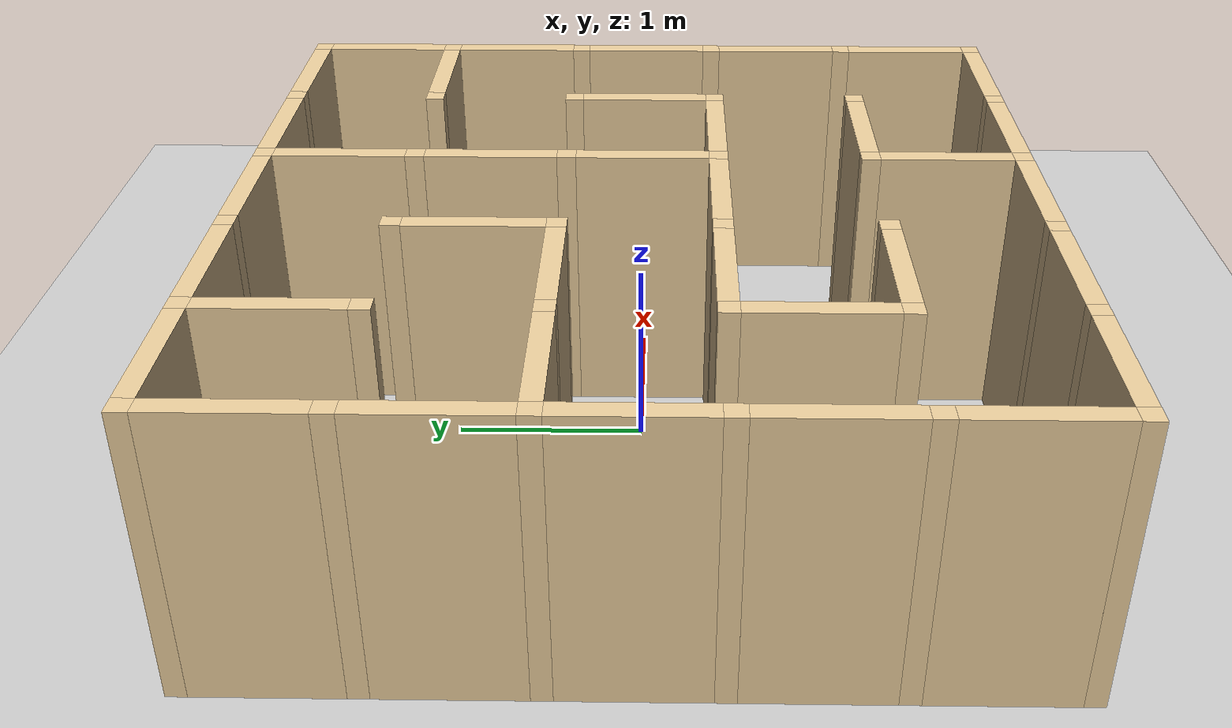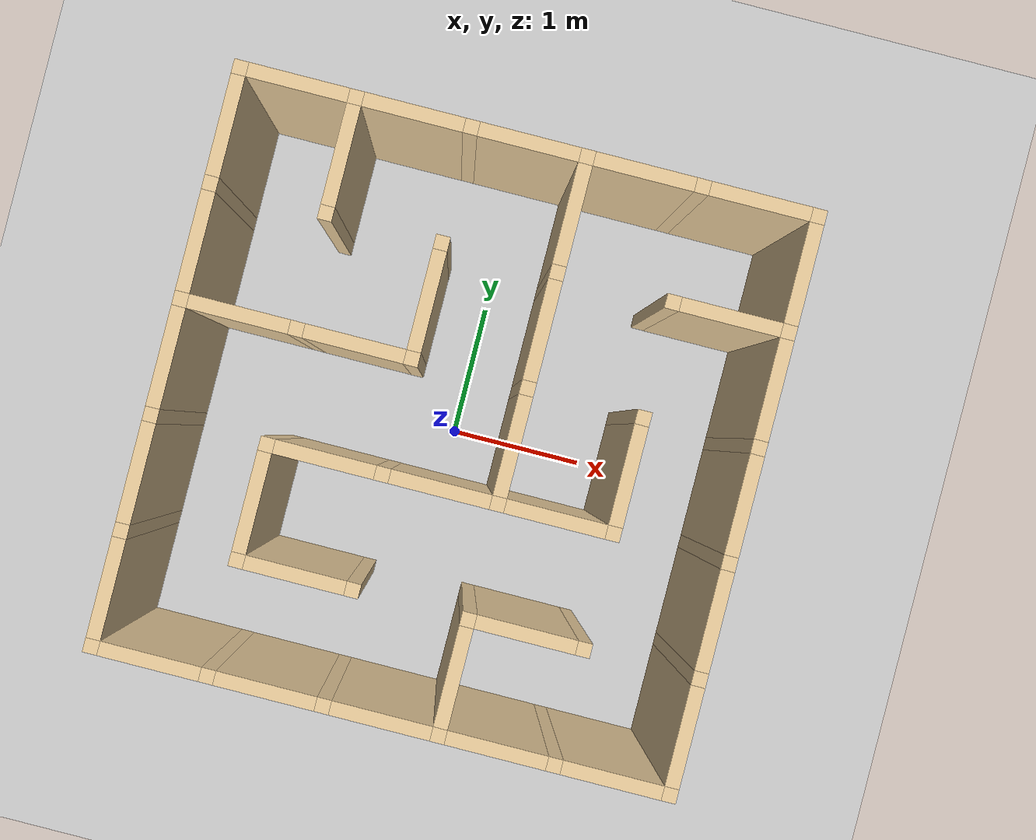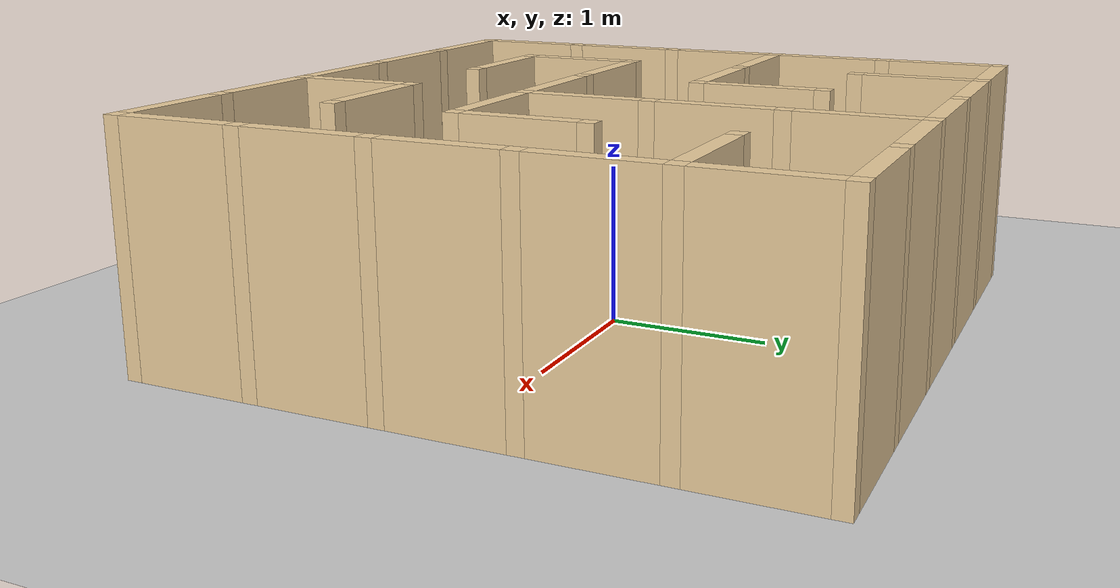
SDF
<?xml version="1.0"?>
<sdf version="1.8">
  <world name="maze_world">

    <plugin
      filename="gz-sim-physics-system"
      name="gz::sim::systems::Physics">
    </plugin>
    <plugin
      filename="gz-sim-user-commands-system"
      name="gz::sim::systems::UserCommands">
    </plugin>
    <plugin
      filename="gz-sim-scene-broadcaster-system"
      name="gz::sim::systems::SceneBroadcaster">
    </plugin>
    <plugin
      filename="gz-sim-sensors-system"
      name="gz::sim::systems::Sensors">
      <render_engine>ogre2</render_engine>
    </plugin>
    <plugin
      filename="gz-sim-imu-system"
      name="gz::sim::systems::Imu">
    </plugin>

    <physics type="ode">
      <real_time_update_rate>1000.0</real_time_update_rate>
      <max_step_size>0.001</max_step_size>
      <real_time_factor>1</real_time_factor>
      <ode>
        <solver>
          <type>quick</type>
          <iters>150</iters>
          <precon_iters>0</precon_iters>
          <sor>1.400000</sor>
          <use_dynamic_moi_rescaling>1</use_dynamic_moi_rescaling>
        </solver>
        <constraints>
          <cfm>0.00001</cfm>
          <erp>0.2</erp>
          <contact_max_correcting_vel>2000.000000</contact_max_correcting_vel>
          <contact_surface_layer>0.01000</contact_surface_layer>
        </constraints>
      </ode>
    </physics>

    <!-- The ground plane is written out here so the world starts with no network.
         The course maze generator wrote a Fuel include for it, which needs a download
         on the first run. -->
    <model name="ground_plane">
      <static>true</static>
      <link name="link">
        <collision name="collision">
          <geometry><plane><normal>0 0 1</normal><size>100 100</size></plane></geometry>
        </collision>
        <visual name="visual">
          <geometry><plane><normal>0 0 1</normal><size>100 100</size></plane></geometry>
          <material>
            <ambient>0.8 0.8 0.8 1</ambient>
            <diffuse>0.8 0.8 0.8 1</diffuse>
          </material>
        </visual>
      </link>
    </model>

    <model name="maze">
      <pose>0 0 0 0 0 0</pose>
		  <link name='Wall_0_0_h'>
		    <collision name='Wall_0_Collision'>
		      <geometry>
		        <box>
		          <size>0.7000000000000001 0.1 1.5</size>
		        </box>
		      </geometry>
		      <pose>0 0 0.75 0 -0 0</pose>
		    </collision>
		    <visual name='Wall_0_Visual'>
		      <pose>0 0 0.75 0 -0 0</pose>
		      <geometry>
		        <box>
		          <size>0.7000000000000001 0.1 1.5</size>
		        </box>
		      </geometry>
		      <material>
		        <diffuse>0.921569 0.807843 0.615686 1</diffuse>
		        <ambient>0.921569 0.807843 0.615686 1</ambient>
		      </material>
		      <meta>
		        <layer>0</layer>
		      </meta>
		    </visual>
		    <pose>-1.6 2.0 0 0 -0 0</pose>
		  </link>
        		  <link name='Wall_0_0_v'>
		    <collision name='Wall_0_Collision'>
		      <geometry>
		        <box>
		          <size>0.7000000000000001 0.1 1.5</size>
		        </box>
		      </geometry>
		      <pose>0 0 0.75 0 -0 0</pose>
		    </collision>
		    <visual name='Wall_0_Visual'>
		      <pose>0 0 0.75 0 -0 0</pose>
		      <geometry>
		        <box>
		          <size>0.7000000000000001 0.1 1.5</size>
		        </box>
		      </geometry>
		      <material>
		        <diffuse>0.921569 0.807843 0.615686 1</diffuse>
		        <ambient>0.921569 0.807843 0.615686 1</ambient>
		      </material>
		      <meta>
		        <layer>0</layer>
		      </meta>
		    </visual>
		    <pose>-2.0 1.6 0 0 -0 1.5708</pose>
		  </link>
        	    <link name='Joint_-2.0_2.0'>
		    <collision name='Wall_2_Collision'>
		      <geometry>
		        <box>
		          <size>0.1 0.1 1.5</size>
		        </box>
		      </geometry>
		      <pose>0 0 0.75 0 -0 0</pose>
		    </collision>
		    <visual name='Wall_2_Visual'>
		      <pose>0 0 0.75 0 -0 0</pose>
		      <geometry>
		        <box>
		          <size>0.1 0.1 1.5</size>
		        </box>
		      </geometry>
		      <material>
		        <diffuse>0.921569 0.807843 0.615686 1</diffuse>
		        <ambient>0.721569 0.907843 0.215686 1</ambient>
		      </material>
		      <meta>
		        <layer>0</layer>
		      </meta>
		    </visual>
		    <pose>-2.0 2.0 0 0 -0 0</pose>
		  </link>
        		  <link name='Wall_1_0_h'>
		    <collision name='Wall_0_Collision'>
		      <geometry>
		        <box>
		          <size>0.7000000000000001 0.1 1.5</size>
		        </box>
		      </geometry>
		      <pose>0 0 0.75 0 -0 0</pose>
		    </collision>
		    <visual name='Wall_0_Visual'>
		      <pose>0 0 0.75 0 -0 0</pose>
		      <geometry>
		        <box>
		          <size>0.7000000000000001 0.1 1.5</size>
		        </box>
		      </geometry>
		      <material>
		        <diffuse>0.921569 0.807843 0.615686 1</diffuse>
		        <ambient>0.921569 0.807843 0.615686 1</ambient>
		      </material>
		      <meta>
		        <layer>0</layer>
		      </meta>
		    </visual>
		    <pose>-0.7999999999999998 2.0 0 0 -0 0</pose>
		  </link>
        		  <link name='Wall_1_0_v'>
		    <collision name='Wall_0_Collision'>
		      <geometry>
		        <box>
		          <size>0.7000000000000001 0.1 1.5</size>
		        </box>
		      </geometry>
		      <pose>0 0 0.75 0 -0 0</pose>
		    </collision>
		    <visual name='Wall_0_Visual'>
		      <pose>0 0 0.75 0 -0 0</pose>
		      <geometry>
		        <box>
		          <size>0.7000000000000001 0.1 1.5</size>
		        </box>
		      </geometry>
		      <material>
		        <diffuse>0.921569 0.807843 0.615686 1</diffuse>
		        <ambient>0.921569 0.807843 0.615686 1</ambient>
		      </material>
		      <meta>
		        <layer>0</layer>
		      </meta>
		    </visual>
		    <pose>-1.2 1.6 0 0 -0 1.5708</pose>
		  </link>
        	    <link name='Joint_-1.2_2.0'>
		    <collision name='Wall_2_Collision'>
		      <geometry>
		        <box>
		          <size>0.1 0.1 1.5</size>
		        </box>
		      </geometry>
		      <pose>0 0 0.75 0 -0 0</pose>
		    </collision>
		    <visual name='Wall_2_Visual'>
		      <pose>0 0 0.75 0 -0 0</pose>
		      <geometry>
		        <box>
		          <size>0.1 0.1 1.5</size>
		        </box>
		      </geometry>
		      <material>
		        <diffuse>0.921569 0.807843 0.615686 1</diffuse>
		        <ambient>0.721569 0.907843 0.215686 1</ambient>
		      </material>
		      <meta>
		        <layer>0</layer>
		      </meta>
		    </visual>
		    <pose>-1.2 2.0 0 0 -0 0</pose>
		  </link>
        		  <link name='Wall_2_0_h'>
		    <collision name='Wall_0_Collision'>
		      <geometry>
		        <box>
		          <size>0.7000000000000001 0.1 1.5</size>
		        </box>
		      </geometry>
		      <pose>0 0 0.75 0 -0 0</pose>
		    </collision>
		    <visual name='Wall_0_Visual'>
		      <pose>0 0 0.75 0 -0 0</pose>
		      <geometry>
		        <box>
		          <size>0.7000000000000001 0.1 1.5</size>
		        </box>
		      </geometry>
		      <material>
		        <diffuse>0.921569 0.807843 0.615686 1</diffuse>
		        <ambient>0.921569 0.807843 0.615686 1</ambient>
		      </material>
		      <meta>
		        <layer>0</layer>
		      </meta>
		    </visual>
		    <pose>0.0 2.0 0 0 -0 0</pose>
		  </link>
        	    <link name='Joint_-0.3999999999999999_2.0'>
		    <collision name='Wall_2_Collision'>
		      <geometry>
		        <box>
		          <size>0.1 0.1 1.5</size>
		        </box>
		      </geometry>
		      <pose>0 0 0.75 0 -0 0</pose>
		    </collision>
		    <visual name='Wall_2_Visual'>
		      <pose>0 0 0.75 0 -0 0</pose>
		      <geometry>
		        <box>
		          <size>0.1 0.1 1.5</size>
		        </box>
		      </geometry>
		      <material>
		        <diffuse>0.921569 0.807843 0.615686 1</diffuse>
		        <ambient>0.721569 0.907843 0.215686 1</ambient>
		      </material>
		      <meta>
		        <layer>0</layer>
		      </meta>
		    </visual>
		    <pose>-0.3999999999999999 2.0 0 0 -0 0</pose>
		  </link>
        		  <link name='Wall_3_0_h'>
		    <collision name='Wall_0_Collision'>
		      <geometry>
		        <box>
		          <size>0.7000000000000001 0.1 1.5</size>
		        </box>
		      </geometry>
		      <pose>0 0 0.75 0 -0 0</pose>
		    </collision>
		    <visual name='Wall_0_Visual'>
		      <pose>0 0 0.75 0 -0 0</pose>
		      <geometry>
		        <box>
		          <size>0.7000000000000001 0.1 1.5</size>
		        </box>
		      </geometry>
		      <material>
		        <diffuse>0.921569 0.807843 0.615686 1</diffuse>
		        <ambient>0.921569 0.807843 0.615686 1</ambient>
		      </material>
		      <meta>
		        <layer>0</layer>
		      </meta>
		    </visual>
		    <pose>0.8000000000000003 2.0 0 0 -0 0</pose>
		  </link>
        		  <link name='Wall_3_0_v'>
		    <collision name='Wall_0_Collision'>
		      <geometry>
		        <box>
		          <size>0.7000000000000001 0.1 1.5</size>
		        </box>
		      </geometry>
		      <pose>0 0 0.75 0 -0 0</pose>
		    </collision>
		    <visual name='Wall_0_Visual'>
		      <pose>0 0 0.75 0 -0 0</pose>
		      <geometry>
		        <box>
		          <size>0.7000000000000001 0.1 1.5</size>
		        </box>
		      </geometry>
		      <material>
		        <diffuse>0.921569 0.807843 0.615686 1</diffuse>
		        <ambient>0.921569 0.807843 0.615686 1</ambient>
		      </material>
		      <meta>
		        <layer>0</layer>
		      </meta>
		    </visual>
		    <pose>0.40000000000000036 1.6 0 0 -0 1.5708</pose>
		  </link>
        	    <link name='Joint_0.40000000000000036_2.0'>
		    <collision name='Wall_2_Collision'>
		      <geometry>
		        <box>
		          <size>0.1 0.1 1.5</size>
		        </box>
		      </geometry>
		      <pose>0 0 0.75 0 -0 0</pose>
		    </collision>
		    <visual name='Wall_2_Visual'>
		      <pose>0 0 0.75 0 -0 0</pose>
		      <geometry>
		        <box>
		          <size>0.1 0.1 1.5</size>
		        </box>
		      </geometry>
		      <material>
		        <diffuse>0.921569 0.807843 0.615686 1</diffuse>
		        <ambient>0.721569 0.907843 0.215686 1</ambient>
		      </material>
		      <meta>
		        <layer>0</layer>
		      </meta>
		    </visual>
		    <pose>0.40000000000000036 2.0 0 0 -0 0</pose>
		  </link>
        		  <link name='Wall_4_0_h'>
		    <collision name='Wall_0_Collision'>
		      <geometry>
		        <box>
		          <size>0.7000000000000001 0.1 1.5</size>
		        </box>
		      </geometry>
		      <pose>0 0 0.75 0 -0 0</pose>
		    </collision>
		    <visual name='Wall_0_Visual'>
		      <pose>0 0 0.75 0 -0 0</pose>
		      <geometry>
		        <box>
		          <size>0.7000000000000001 0.1 1.5</size>
		        </box>
		      </geometry>
		      <material>
		        <diffuse>0.921569 0.807843 0.615686 1</diffuse>
		        <ambient>0.921569 0.807843 0.615686 1</ambient>
		      </material>
		      <meta>
		        <layer>0</layer>
		      </meta>
		    </visual>
		    <pose>1.6 2.0 0 0 -0 0</pose>
		  </link>
        	    <link name='Joint_1.2000000000000002_2.0'>
		    <collision name='Wall_2_Collision'>
		      <geometry>
		        <box>
		          <size>0.1 0.1 1.5</size>
		        </box>
		      </geometry>
		      <pose>0 0 0.75 0 -0 0</pose>
		    </collision>
		    <visual name='Wall_2_Visual'>
		      <pose>0 0 0.75 0 -0 0</pose>
		      <geometry>
		        <box>
		          <size>0.1 0.1 1.5</size>
		        </box>
		      </geometry>
		      <material>
		        <diffuse>0.921569 0.807843 0.615686 1</diffuse>
		        <ambient>0.721569 0.907843 0.215686 1</ambient>
		      </material>
		      <meta>
		        <layer>0</layer>
		      </meta>
		    </visual>
		    <pose>1.2000000000000002 2.0 0 0 -0 0</pose>
		  </link>
        		  <link name='Wall_5_0_v'>
		    <collision name='Wall_0_Collision'>
		      <geometry>
		        <box>
		          <size>0.7000000000000001 0.1 1.5</size>
		        </box>
		      </geometry>
		      <pose>0 0 0.75 0 -0 0</pose>
		    </collision>
		    <visual name='Wall_0_Visual'>
		      <pose>0 0 0.75 0 -0 0</pose>
		      <geometry>
		        <box>
		          <size>0.7000000000000001 0.1 1.5</size>
		        </box>
		      </geometry>
		      <material>
		        <diffuse>0.921569 0.807843 0.615686 1</diffuse>
		        <ambient>0.921569 0.807843 0.615686 1</ambient>
		      </material>
		      <meta>
		        <layer>0</layer>
		      </meta>
		    </visual>
		    <pose>2.0 1.6 0 0 -0 1.5708</pose>
		  </link>
        	    <link name='Joint_2.0_2.0'>
		    <collision name='Wall_2_Collision'>
		      <geometry>
		        <box>
		          <size>0.1 0.1 1.5</size>
		        </box>
		      </geometry>
		      <pose>0 0 0.75 0 -0 0</pose>
		    </collision>
		    <visual name='Wall_2_Visual'>
		      <pose>0 0 0.75 0 -0 0</pose>
		      <geometry>
		        <box>
		          <size>0.1 0.1 1.5</size>
		        </box>
		      </geometry>
		      <material>
		        <diffuse>0.921569 0.807843 0.615686 1</diffuse>
		        <ambient>0.721569 0.907843 0.215686 1</ambient>
		      </material>
		      <meta>
		        <layer>0</layer>
		      </meta>
		    </visual>
		    <pose>2.0 2.0 0 0 -0 0</pose>
		  </link>
        		  <link name='Wall_0_1_v'>
		    <collision name='Wall_0_Collision'>
		      <geometry>
		        <box>
		          <size>0.7000000000000001 0.1 1.5</size>
		        </box>
		      </geometry>
		      <pose>0 0 0.75 0 -0 0</pose>
		    </collision>
		    <visual name='Wall_0_Visual'>
		      <pose>0 0 0.75 0 -0 0</pose>
		      <geometry>
		        <box>
		          <size>0.7000000000000001 0.1 1.5</size>
		        </box>
		      </geometry>
		      <material>
		        <diffuse>0.921569 0.807843 0.615686 1</diffuse>
		        <ambient>0.921569 0.807843 0.615686 1</ambient>
		      </material>
		      <meta>
		        <layer>0</layer>
		      </meta>
		    </visual>
		    <pose>-2.0 0.7999999999999998 0 0 -0 1.5708</pose>
		  </link>
        	    <link name='Joint_-2.0_1.2'>
		    <collision name='Wall_2_Collision'>
		      <geometry>
		        <box>
		          <size>0.1 0.1 1.5</size>
		        </box>
		      </geometry>
		      <pose>0 0 0.75 0 -0 0</pose>
		    </collision>
		    <visual name='Wall_2_Visual'>
		      <pose>0 0 0.75 0 -0 0</pose>
		      <geometry>
		        <box>
		          <size>0.1 0.1 1.5</size>
		        </box>
		      </geometry>
		      <material>
		        <diffuse>0.921569 0.807843 0.615686 1</diffuse>
		        <ambient>0.721569 0.907843 0.215686 1</ambient>
		      </material>
		      <meta>
		        <layer>0</layer>
		      </meta>
		    </visual>
		    <pose>-2.0 1.2 0 0 -0 0</pose>
		  </link>
        	    <link name='Joint_-1.2_1.2'>
		    <collision name='Wall_2_Collision'>
		      <geometry>
		        <box>
		          <size>0.1 0.1 1.5</size>
		        </box>
		      </geometry>
		      <pose>0 0 0.75 0 -0 0</pose>
		    </collision>
		    <visual name='Wall_2_Visual'>
		      <pose>0 0 0.75 0 -0 0</pose>
		      <geometry>
		        <box>
		          <size>0.1 0.1 1.5</size>
		        </box>
		      </geometry>
		      <material>
		        <diffuse>0.921569 0.807843 0.615686 1</diffuse>
		        <ambient>0.721569 0.907843 0.215686 1</ambient>
		      </material>
		      <meta>
		        <layer>0</layer>
		      </meta>
		    </visual>
		    <pose>-1.2 1.2 0 0 -0 0</pose>
		  </link>
        		  <link name='Wall_2_1_v'>
		    <collision name='Wall_0_Collision'>
		      <geometry>
		        <box>
		          <size>0.7000000000000001 0.1 1.5</size>
		        </box>
		      </geometry>
		      <pose>0 0 0.75 0 -0 0</pose>
		    </collision>
		    <visual name='Wall_0_Visual'>
		      <pose>0 0 0.75 0 -0 0</pose>
		      <geometry>
		        <box>
		          <size>0.7000000000000001 0.1 1.5</size>
		        </box>
		      </geometry>
		      <material>
		        <diffuse>0.921569 0.807843 0.615686 1</diffuse>
		        <ambient>0.921569 0.807843 0.615686 1</ambient>
		      </material>
		      <meta>
		        <layer>0</layer>
		      </meta>
		    </visual>
		    <pose>-0.3999999999999999 0.7999999999999998 0 0 -0 1.5708</pose>
		  </link>
        	    <link name='Joint_-0.3999999999999999_1.2'>
		    <collision name='Wall_2_Collision'>
		      <geometry>
		        <box>
		          <size>0.1 0.1 1.5</size>
		        </box>
		      </geometry>
		      <pose>0 0 0.75 0 -0 0</pose>
		    </collision>
		    <visual name='Wall_2_Visual'>
		      <pose>0 0 0.75 0 -0 0</pose>
		      <geometry>
		        <box>
		          <size>0.1 0.1 1.5</size>
		        </box>
		      </geometry>
		      <material>
		        <diffuse>0.921569 0.807843 0.615686 1</diffuse>
		        <ambient>0.721569 0.907843 0.215686 1</ambient>
		      </material>
		      <meta>
		        <layer>0</layer>
		      </meta>
		    </visual>
		    <pose>-0.3999999999999999 1.2 0 0 -0 0</pose>
		  </link>
        		  <link name='Wall_3_1_v'>
		    <collision name='Wall_0_Collision'>
		      <geometry>
		        <box>
		          <size>0.7000000000000001 0.1 1.5</size>
		        </box>
		      </geometry>
		      <pose>0 0 0.75 0 -0 0</pose>
		    </collision>
		    <visual name='Wall_0_Visual'>
		      <pose>0 0 0.75 0 -0 0</pose>
		      <geometry>
		        <box>
		          <size>0.7000000000000001 0.1 1.5</size>
		        </box>
		      </geometry>
		      <material>
		        <diffuse>0.921569 0.807843 0.615686 1</diffuse>
		        <ambient>0.921569 0.807843 0.615686 1</ambient>
		      </material>
		      <meta>
		        <layer>0</layer>
		      </meta>
		    </visual>
		    <pose>0.40000000000000036 0.7999999999999998 0 0 -0 1.5708</pose>
		  </link>
        	    <link name='Joint_0.40000000000000036_1.2'>
		    <collision name='Wall_2_Collision'>
		      <geometry>
		        <box>
		          <size>0.1 0.1 1.5</size>
		        </box>
		      </geometry>
		      <pose>0 0 0.75 0 -0 0</pose>
		    </collision>
		    <visual name='Wall_2_Visual'>
		      <pose>0 0 0.75 0 -0 0</pose>
		      <geometry>
		        <box>
		          <size>0.1 0.1 1.5</size>
		        </box>
		      </geometry>
		      <material>
		        <diffuse>0.921569 0.807843 0.615686 1</diffuse>
		        <ambient>0.721569 0.907843 0.215686 1</ambient>
		      </material>
		      <meta>
		        <layer>0</layer>
		      </meta>
		    </visual>
		    <pose>0.40000000000000036 1.2 0 0 -0 0</pose>
		  </link>
        		  <link name='Wall_4_1_h'>
		    <collision name='Wall_0_Collision'>
		      <geometry>
		        <box>
		          <size>0.7000000000000001 0.1 1.5</size>
		        </box>
		      </geometry>
		      <pose>0 0 0.75 0 -0 0</pose>
		    </collision>
		    <visual name='Wall_0_Visual'>
		      <pose>0 0 0.75 0 -0 0</pose>
		      <geometry>
		        <box>
		          <size>0.7000000000000001 0.1 1.5</size>
		        </box>
		      </geometry>
		      <material>
		        <diffuse>0.921569 0.807843 0.615686 1</diffuse>
		        <ambient>0.921569 0.807843 0.615686 1</ambient>
		      </material>
		      <meta>
		        <layer>0</layer>
		      </meta>
		    </visual>
		    <pose>1.6 1.2 0 0 -0 0</pose>
		  </link>
        	    <link name='Joint_1.2000000000000002_1.2'>
		    <collision name='Wall_2_Collision'>
		      <geometry>
		        <box>
		          <size>0.1 0.1 1.5</size>
		        </box>
		      </geometry>
		      <pose>0 0 0.75 0 -0 0</pose>
		    </collision>
		    <visual name='Wall_2_Visual'>
		      <pose>0 0 0.75 0 -0 0</pose>
		      <geometry>
		        <box>
		          <size>0.1 0.1 1.5</size>
		        </box>
		      </geometry>
		      <material>
		        <diffuse>0.921569 0.807843 0.615686 1</diffuse>
		        <ambient>0.721569 0.907843 0.215686 1</ambient>
		      </material>
		      <meta>
		        <layer>0</layer>
		      </meta>
		    </visual>
		    <pose>1.2000000000000002 1.2 0 0 -0 0</pose>
		  </link>
        		  <link name='Wall_5_1_v'>
		    <collision name='Wall_0_Collision'>
		      <geometry>
		        <box>
		          <size>0.7000000000000001 0.1 1.5</size>
		        </box>
		      </geometry>
		      <pose>0 0 0.75 0 -0 0</pose>
		    </collision>
		    <visual name='Wall_0_Visual'>
		      <pose>0 0 0.75 0 -0 0</pose>
		      <geometry>
		        <box>
		          <size>0.7000000000000001 0.1 1.5</size>
		        </box>
		      </geometry>
		      <material>
		        <diffuse>0.921569 0.807843 0.615686 1</diffuse>
		        <ambient>0.921569 0.807843 0.615686 1</ambient>
		      </material>
		      <meta>
		        <layer>0</layer>
		      </meta>
		    </visual>
		    <pose>2.0 0.7999999999999998 0 0 -0 1.5708</pose>
		  </link>
        	    <link name='Joint_2.0_1.2'>
		    <collision name='Wall_2_Collision'>
		      <geometry>
		        <box>
		          <size>0.1 0.1 1.5</size>
		        </box>
		      </geometry>
		      <pose>0 0 0.75 0 -0 0</pose>
		    </collision>
		    <visual name='Wall_2_Visual'>
		      <pose>0 0 0.75 0 -0 0</pose>
		      <geometry>
		        <box>
		          <size>0.1 0.1 1.5</size>
		        </box>
		      </geometry>
		      <material>
		        <diffuse>0.921569 0.807843 0.615686 1</diffuse>
		        <ambient>0.721569 0.907843 0.215686 1</ambient>
		      </material>
		      <meta>
		        <layer>0</layer>
		      </meta>
		    </visual>
		    <pose>2.0 1.2 0 0 -0 0</pose>
		  </link>
        		  <link name='Wall_0_2_h'>
		    <collision name='Wall_0_Collision'>
		      <geometry>
		        <box>
		          <size>0.7000000000000001 0.1 1.5</size>
		        </box>
		      </geometry>
		      <pose>0 0 0.75 0 -0 0</pose>
		    </collision>
		    <visual name='Wall_0_Visual'>
		      <pose>0 0 0.75 0 -0 0</pose>
		      <geometry>
		        <box>
		          <size>0.7000000000000001 0.1 1.5</size>
		        </box>
		      </geometry>
		      <material>
		        <diffuse>0.921569 0.807843 0.615686 1</diffuse>
		        <ambient>0.921569 0.807843 0.615686 1</ambient>
		      </material>
		      <meta>
		        <layer>0</layer>
		      </meta>
		    </visual>
		    <pose>-1.6 0.3999999999999999 0 0 -0 0</pose>
		  </link>
        		  <link name='Wall_0_2_v'>
		    <collision name='Wall_0_Collision'>
		      <geometry>
		        <box>
		          <size>0.7000000000000001 0.1 1.5</size>
		        </box>
		      </geometry>
		      <pose>0 0 0.75 0 -0 0</pose>
		    </collision>
		    <visual name='Wall_0_Visual'>
		      <pose>0 0 0.75 0 -0 0</pose>
		      <geometry>
		        <box>
		          <size>0.7000000000000001 0.1 1.5</size>
		        </box>
		      </geometry>
		      <material>
		        <diffuse>0.921569 0.807843 0.615686 1</diffuse>
		        <ambient>0.921569 0.807843 0.615686 1</ambient>
		      </material>
		      <meta>
		        <layer>0</layer>
		      </meta>
		    </visual>
		    <pose>-2.0 -0.0 0 0 -0 1.5708</pose>
		  </link>
        	    <link name='Joint_-2.0_0.3999999999999999'>
		    <collision name='Wall_2_Collision'>
		      <geometry>
		        <box>
		          <size>0.1 0.1 1.5</size>
		        </box>
		      </geometry>
		      <pose>0 0 0.75 0 -0 0</pose>
		    </collision>
		    <visual name='Wall_2_Visual'>
		      <pose>0 0 0.75 0 -0 0</pose>
		      <geometry>
		        <box>
		          <size>0.1 0.1 1.5</size>
		        </box>
		      </geometry>
		      <material>
		        <diffuse>0.921569 0.807843 0.615686 1</diffuse>
		        <ambient>0.721569 0.907843 0.215686 1</ambient>
		      </material>
		      <meta>
		        <layer>0</layer>
		      </meta>
		    </visual>
		    <pose>-2.0 0.3999999999999999 0 0 -0 0</pose>
		  </link>
        		  <link name='Wall_1_2_h'>
		    <collision name='Wall_0_Collision'>
		      <geometry>
		        <box>
		          <size>0.7000000000000001 0.1 1.5</size>
		        </box>
		      </geometry>
		      <pose>0 0 0.75 0 -0 0</pose>
		    </collision>
		    <visual name='Wall_0_Visual'>
		      <pose>0 0 0.75 0 -0 0</pose>
		      <geometry>
		        <box>
		          <size>0.7000000000000001 0.1 1.5</size>
		        </box>
		      </geometry>
		      <material>
		        <diffuse>0.921569 0.807843 0.615686 1</diffuse>
		        <ambient>0.921569 0.807843 0.615686 1</ambient>
		      </material>
		      <meta>
		        <layer>0</layer>
		      </meta>
		    </visual>
		    <pose>-0.7999999999999998 0.3999999999999999 0 0 -0 0</pose>
		  </link>
        	    <link name='Joint_-1.2_0.3999999999999999'>
		    <collision name='Wall_2_Collision'>
		      <geometry>
		        <box>
		          <size>0.1 0.1 1.5</size>
		        </box>
		      </geometry>
		      <pose>0 0 0.75 0 -0 0</pose>
		    </collision>
		    <visual name='Wall_2_Visual'>
		      <pose>0 0 0.75 0 -0 0</pose>
		      <geometry>
		        <box>
		          <size>0.1 0.1 1.5</size>
		        </box>
		      </geometry>
		      <material>
		        <diffuse>0.921569 0.807843 0.615686 1</diffuse>
		        <ambient>0.721569 0.907843 0.215686 1</ambient>
		      </material>
		      <meta>
		        <layer>0</layer>
		      </meta>
		    </visual>
		    <pose>-1.2 0.3999999999999999 0 0 -0 0</pose>
		  </link>
        	    <link name='Joint_-0.3999999999999999_0.3999999999999999'>
		    <collision name='Wall_2_Collision'>
		      <geometry>
		        <box>
		          <size>0.1 0.1 1.5</size>
		        </box>
		      </geometry>
		      <pose>0 0 0.75 0 -0 0</pose>
		    </collision>
		    <visual name='Wall_2_Visual'>
		      <pose>0 0 0.75 0 -0 0</pose>
		      <geometry>
		        <box>
		          <size>0.1 0.1 1.5</size>
		        </box>
		      </geometry>
		      <material>
		        <diffuse>0.921569 0.807843 0.615686 1</diffuse>
		        <ambient>0.721569 0.907843 0.215686 1</ambient>
		      </material>
		      <meta>
		        <layer>0</layer>
		      </meta>
		    </visual>
		    <pose>-0.3999999999999999 0.3999999999999999 0 0 -0 0</pose>
		  </link>
        		  <link name='Wall_3_2_v'>
		    <collision name='Wall_0_Collision'>
		      <geometry>
		        <box>
		          <size>0.7000000000000001 0.1 1.5</size>
		        </box>
		      </geometry>
		      <pose>0 0 0.75 0 -0 0</pose>
		    </collision>
		    <visual name='Wall_0_Visual'>
		      <pose>0 0 0.75 0 -0 0</pose>
		      <geometry>
		        <box>
		          <size>0.7000000000000001 0.1 1.5</size>
		        </box>
		      </geometry>
		      <material>
		        <diffuse>0.921569 0.807843 0.615686 1</diffuse>
		        <ambient>0.921569 0.807843 0.615686 1</ambient>
		      </material>
		      <meta>
		        <layer>0</layer>
		      </meta>
		    </visual>
		    <pose>0.40000000000000036 -0.0 0 0 -0 1.5708</pose>
		  </link>
        	    <link name='Joint_0.40000000000000036_0.3999999999999999'>
		    <collision name='Wall_2_Collision'>
		      <geometry>
		        <box>
		          <size>0.1 0.1 1.5</size>
		        </box>
		      </geometry>
		      <pose>0 0 0.75 0 -0 0</pose>
		    </collision>
		    <visual name='Wall_2_Visual'>
		      <pose>0 0 0.75 0 -0 0</pose>
		      <geometry>
		        <box>
		          <size>0.1 0.1 1.5</size>
		        </box>
		      </geometry>
		      <material>
		        <diffuse>0.921569 0.807843 0.615686 1</diffuse>
		        <ambient>0.721569 0.907843 0.215686 1</ambient>
		      </material>
		      <meta>
		        <layer>0</layer>
		      </meta>
		    </visual>
		    <pose>0.40000000000000036 0.3999999999999999 0 0 -0 0</pose>
		  </link>
        		  <link name='Wall_4_2_v'>
		    <collision name='Wall_0_Collision'>
		      <geometry>
		        <box>
		          <size>0.7000000000000001 0.1 1.5</size>
		        </box>
		      </geometry>
		      <pose>0 0 0.75 0 -0 0</pose>
		    </collision>
		    <visual name='Wall_0_Visual'>
		      <pose>0 0 0.75 0 -0 0</pose>
		      <geometry>
		        <box>
		          <size>0.7000000000000001 0.1 1.5</size>
		        </box>
		      </geometry>
		      <material>
		        <diffuse>0.921569 0.807843 0.615686 1</diffuse>
		        <ambient>0.921569 0.807843 0.615686 1</ambient>
		      </material>
		      <meta>
		        <layer>0</layer>
		      </meta>
		    </visual>
		    <pose>1.2000000000000002 -0.0 0 0 -0 1.5708</pose>
		  </link>
        	    <link name='Joint_1.2000000000000002_0.3999999999999999'>
		    <collision name='Wall_2_Collision'>
		      <geometry>
		        <box>
		          <size>0.1 0.1 1.5</size>
		        </box>
		      </geometry>
		      <pose>0 0 0.75 0 -0 0</pose>
		    </collision>
		    <visual name='Wall_2_Visual'>
		      <pose>0 0 0.75 0 -0 0</pose>
		      <geometry>
		        <box>
		          <size>0.1 0.1 1.5</size>
		        </box>
		      </geometry>
		      <material>
		        <diffuse>0.921569 0.807843 0.615686 1</diffuse>
		        <ambient>0.721569 0.907843 0.215686 1</ambient>
		      </material>
		      <meta>
		        <layer>0</layer>
		      </meta>
		    </visual>
		    <pose>1.2000000000000002 0.3999999999999999 0 0 -0 0</pose>
		  </link>
        		  <link name='Wall_5_2_v'>
		    <collision name='Wall_0_Collision'>
		      <geometry>
		        <box>
		          <size>0.7000000000000001 0.1 1.5</size>
		        </box>
		      </geometry>
		      <pose>0 0 0.75 0 -0 0</pose>
		    </collision>
		    <visual name='Wall_0_Visual'>
		      <pose>0 0 0.75 0 -0 0</pose>
		      <geometry>
		        <box>
		          <size>0.7000000000000001 0.1 1.5</size>
		        </box>
		      </geometry>
		      <material>
		        <diffuse>0.921569 0.807843 0.615686 1</diffuse>
		        <ambient>0.921569 0.807843 0.615686 1</ambient>
		      </material>
		      <meta>
		        <layer>0</layer>
		      </meta>
		    </visual>
		    <pose>2.0 -0.0 0 0 -0 1.5708</pose>
		  </link>
        	    <link name='Joint_2.0_0.3999999999999999'>
		    <collision name='Wall_2_Collision'>
		      <geometry>
		        <box>
		          <size>0.1 0.1 1.5</size>
		        </box>
		      </geometry>
		      <pose>0 0 0.75 0 -0 0</pose>
		    </collision>
		    <visual name='Wall_2_Visual'>
		      <pose>0 0 0.75 0 -0 0</pose>
		      <geometry>
		        <box>
		          <size>0.1 0.1 1.5</size>
		        </box>
		      </geometry>
		      <material>
		        <diffuse>0.921569 0.807843 0.615686 1</diffuse>
		        <ambient>0.721569 0.907843 0.215686 1</ambient>
		      </material>
		      <meta>
		        <layer>0</layer>
		      </meta>
		    </visual>
		    <pose>2.0 0.3999999999999999 0 0 -0 0</pose>
		  </link>
        		  <link name='Wall_0_3_v'>
		    <collision name='Wall_0_Collision'>
		      <geometry>
		        <box>
		          <size>0.7000000000000001 0.1 1.5</size>
		        </box>
		      </geometry>
		      <pose>0 0 0.75 0 -0 0</pose>
		    </collision>
		    <visual name='Wall_0_Visual'>
		      <pose>0 0 0.75 0 -0 0</pose>
		      <geometry>
		        <box>
		          <size>0.7000000000000001 0.1 1.5</size>
		        </box>
		      </geometry>
		      <material>
		        <diffuse>0.921569 0.807843 0.615686 1</diffuse>
		        <ambient>0.921569 0.807843 0.615686 1</ambient>
		      </material>
		      <meta>
		        <layer>0</layer>
		      </meta>
		    </visual>
		    <pose>-2.0 -0.8000000000000003 0 0 -0 1.5708</pose>
		  </link>
        	    <link name='Joint_-2.0_-0.40000000000000036'>
		    <collision name='Wall_2_Collision'>
		      <geometry>
		        <box>
		          <size>0.1 0.1 1.5</size>
		        </box>
		      </geometry>
		      <pose>0 0 0.75 0 -0 0</pose>
		    </collision>
		    <visual name='Wall_2_Visual'>
		      <pose>0 0 0.75 0 -0 0</pose>
		      <geometry>
		        <box>
		          <size>0.1 0.1 1.5</size>
		        </box>
		      </geometry>
		      <material>
		        <diffuse>0.921569 0.807843 0.615686 1</diffuse>
		        <ambient>0.721569 0.907843 0.215686 1</ambient>
		      </material>
		      <meta>
		        <layer>0</layer>
		      </meta>
		    </visual>
		    <pose>-2.0 -0.40000000000000036 0 0 -0 0</pose>
		  </link>
        		  <link name='Wall_1_3_h'>
		    <collision name='Wall_0_Collision'>
		      <geometry>
		        <box>
		          <size>0.7000000000000001 0.1 1.5</size>
		        </box>
		      </geometry>
		      <pose>0 0 0.75 0 -0 0</pose>
		    </collision>
		    <visual name='Wall_0_Visual'>
		      <pose>0 0 0.75 0 -0 0</pose>
		      <geometry>
		        <box>
		          <size>0.7000000000000001 0.1 1.5</size>
		        </box>
		      </geometry>
		      <material>
		        <diffuse>0.921569 0.807843 0.615686 1</diffuse>
		        <ambient>0.921569 0.807843 0.615686 1</ambient>
		      </material>
		      <meta>
		        <layer>0</layer>
		      </meta>
		    </visual>
		    <pose>-0.7999999999999998 -0.40000000000000036 0 0 -0 0</pose>
		  </link>
        		  <link name='Wall_1_3_v'>
		    <collision name='Wall_0_Collision'>
		      <geometry>
		        <box>
		          <size>0.7000000000000001 0.1 1.5</size>
		        </box>
		      </geometry>
		      <pose>0 0 0.75 0 -0 0</pose>
		    </collision>
		    <visual name='Wall_0_Visual'>
		      <pose>0 0 0.75 0 -0 0</pose>
		      <geometry>
		        <box>
		          <size>0.7000000000000001 0.1 1.5</size>
		        </box>
		      </geometry>
		      <material>
		        <diffuse>0.921569 0.807843 0.615686 1</diffuse>
		        <ambient>0.921569 0.807843 0.615686 1</ambient>
		      </material>
		      <meta>
		        <layer>0</layer>
		      </meta>
		    </visual>
		    <pose>-1.2 -0.8000000000000003 0 0 -0 1.5708</pose>
		  </link>
        	    <link name='Joint_-1.2_-0.40000000000000036'>
		    <collision name='Wall_2_Collision'>
		      <geometry>
		        <box>
		          <size>0.1 0.1 1.5</size>
		        </box>
		      </geometry>
		      <pose>0 0 0.75 0 -0 0</pose>
		    </collision>
		    <visual name='Wall_2_Visual'>
		      <pose>0 0 0.75 0 -0 0</pose>
		      <geometry>
		        <box>
		          <size>0.1 0.1 1.5</size>
		        </box>
		      </geometry>
		      <material>
		        <diffuse>0.921569 0.807843 0.615686 1</diffuse>
		        <ambient>0.721569 0.907843 0.215686 1</ambient>
		      </material>
		      <meta>
		        <layer>0</layer>
		      </meta>
		    </visual>
		    <pose>-1.2 -0.40000000000000036 0 0 -0 0</pose>
		  </link>
        		  <link name='Wall_2_3_h'>
		    <collision name='Wall_0_Collision'>
		      <geometry>
		        <box>
		          <size>0.7000000000000001 0.1 1.5</size>
		        </box>
		      </geometry>
		      <pose>0 0 0.75 0 -0 0</pose>
		    </collision>
		    <visual name='Wall_0_Visual'>
		      <pose>0 0 0.75 0 -0 0</pose>
		      <geometry>
		        <box>
		          <size>0.7000000000000001 0.1 1.5</size>
		        </box>
		      </geometry>
		      <material>
		        <diffuse>0.921569 0.807843 0.615686 1</diffuse>
		        <ambient>0.921569 0.807843 0.615686 1</ambient>
		      </material>
		      <meta>
		        <layer>0</layer>
		      </meta>
		    </visual>
		    <pose>0.0 -0.40000000000000036 0 0 -0 0</pose>
		  </link>
        	    <link name='Joint_-0.3999999999999999_-0.40000000000000036'>
		    <collision name='Wall_2_Collision'>
		      <geometry>
		        <box>
		          <size>0.1 0.1 1.5</size>
		        </box>
		      </geometry>
		      <pose>0 0 0.75 0 -0 0</pose>
		    </collision>
		    <visual name='Wall_2_Visual'>
		      <pose>0 0 0.75 0 -0 0</pose>
		      <geometry>
		        <box>
		          <size>0.1 0.1 1.5</size>
		        </box>
		      </geometry>
		      <material>
		        <diffuse>0.921569 0.807843 0.615686 1</diffuse>
		        <ambient>0.721569 0.907843 0.215686 1</ambient>
		      </material>
		      <meta>
		        <layer>0</layer>
		      </meta>
		    </visual>
		    <pose>-0.3999999999999999 -0.40000000000000036 0 0 -0 0</pose>
		  </link>
        		  <link name='Wall_3_3_h'>
		    <collision name='Wall_0_Collision'>
		      <geometry>
		        <box>
		          <size>0.7000000000000001 0.1 1.5</size>
		        </box>
		      </geometry>
		      <pose>0 0 0.75 0 -0 0</pose>
		    </collision>
		    <visual name='Wall_0_Visual'>
		      <pose>0 0 0.75 0 -0 0</pose>
		      <geometry>
		        <box>
		          <size>0.7000000000000001 0.1 1.5</size>
		        </box>
		      </geometry>
		      <material>
		        <diffuse>0.921569 0.807843 0.615686 1</diffuse>
		        <ambient>0.921569 0.807843 0.615686 1</ambient>
		      </material>
		      <meta>
		        <layer>0</layer>
		      </meta>
		    </visual>
		    <pose>0.8000000000000003 -0.40000000000000036 0 0 -0 0</pose>
		  </link>
        	    <link name='Joint_0.40000000000000036_-0.40000000000000036'>
		    <collision name='Wall_2_Collision'>
		      <geometry>
		        <box>
		          <size>0.1 0.1 1.5</size>
		        </box>
		      </geometry>
		      <pose>0 0 0.75 0 -0 0</pose>
		    </collision>
		    <visual name='Wall_2_Visual'>
		      <pose>0 0 0.75 0 -0 0</pose>
		      <geometry>
		        <box>
		          <size>0.1 0.1 1.5</size>
		        </box>
		      </geometry>
		      <material>
		        <diffuse>0.921569 0.807843 0.615686 1</diffuse>
		        <ambient>0.721569 0.907843 0.215686 1</ambient>
		      </material>
		      <meta>
		        <layer>0</layer>
		      </meta>
		    </visual>
		    <pose>0.40000000000000036 -0.40000000000000036 0 0 -0 0</pose>
		  </link>
        	    <link name='Joint_1.2000000000000002_-0.40000000000000036'>
		    <collision name='Wall_2_Collision'>
		      <geometry>
		        <box>
		          <size>0.1 0.1 1.5</size>
		        </box>
		      </geometry>
		      <pose>0 0 0.75 0 -0 0</pose>
		    </collision>
		    <visual name='Wall_2_Visual'>
		      <pose>0 0 0.75 0 -0 0</pose>
		      <geometry>
		        <box>
		          <size>0.1 0.1 1.5</size>
		        </box>
		      </geometry>
		      <material>
		        <diffuse>0.921569 0.807843 0.615686 1</diffuse>
		        <ambient>0.721569 0.907843 0.215686 1</ambient>
		      </material>
		      <meta>
		        <layer>0</layer>
		      </meta>
		    </visual>
		    <pose>1.2000000000000002 -0.40000000000000036 0 0 -0 0</pose>
		  </link>
        		  <link name='Wall_5_3_v'>
		    <collision name='Wall_0_Collision'>
		      <geometry>
		        <box>
		          <size>0.7000000000000001 0.1 1.5</size>
		        </box>
		      </geometry>
		      <pose>0 0 0.75 0 -0 0</pose>
		    </collision>
		    <visual name='Wall_0_Visual'>
		      <pose>0 0 0.75 0 -0 0</pose>
		      <geometry>
		        <box>
		          <size>0.7000000000000001 0.1 1.5</size>
		        </box>
		      </geometry>
		      <material>
		        <diffuse>0.921569 0.807843 0.615686 1</diffuse>
		        <ambient>0.921569 0.807843 0.615686 1</ambient>
		      </material>
		      <meta>
		        <layer>0</layer>
		      </meta>
		    </visual>
		    <pose>2.0 -0.8000000000000003 0 0 -0 1.5708</pose>
		  </link>
        	    <link name='Joint_2.0_-0.40000000000000036'>
		    <collision name='Wall_2_Collision'>
		      <geometry>
		        <box>
		          <size>0.1 0.1 1.5</size>
		        </box>
		      </geometry>
		      <pose>0 0 0.75 0 -0 0</pose>
		    </collision>
		    <visual name='Wall_2_Visual'>
		      <pose>0 0 0.75 0 -0 0</pose>
		      <geometry>
		        <box>
		          <size>0.1 0.1 1.5</size>
		        </box>
		      </geometry>
		      <material>
		        <diffuse>0.921569 0.807843 0.615686 1</diffuse>
		        <ambient>0.721569 0.907843 0.215686 1</ambient>
		      </material>
		      <meta>
		        <layer>0</layer>
		      </meta>
		    </visual>
		    <pose>2.0 -0.40000000000000036 0 0 -0 0</pose>
		  </link>
        		  <link name='Wall_0_4_v'>
		    <collision name='Wall_0_Collision'>
		      <geometry>
		        <box>
		          <size>0.7000000000000001 0.1 1.5</size>
		        </box>
		      </geometry>
		      <pose>0 0 0.75 0 -0 0</pose>
		    </collision>
		    <visual name='Wall_0_Visual'>
		      <pose>0 0 0.75 0 -0 0</pose>
		      <geometry>
		        <box>
		          <size>0.7000000000000001 0.1 1.5</size>
		        </box>
		      </geometry>
		      <material>
		        <diffuse>0.921569 0.807843 0.615686 1</diffuse>
		        <ambient>0.921569 0.807843 0.615686 1</ambient>
		      </material>
		      <meta>
		        <layer>0</layer>
		      </meta>
		    </visual>
		    <pose>-2.0 -1.6 0 0 -0 1.5708</pose>
		  </link>
        	    <link name='Joint_-2.0_-1.2000000000000002'>
		    <collision name='Wall_2_Collision'>
		      <geometry>
		        <box>
		          <size>0.1 0.1 1.5</size>
		        </box>
		      </geometry>
		      <pose>0 0 0.75 0 -0 0</pose>
		    </collision>
		    <visual name='Wall_2_Visual'>
		      <pose>0 0 0.75 0 -0 0</pose>
		      <geometry>
		        <box>
		          <size>0.1 0.1 1.5</size>
		        </box>
		      </geometry>
		      <material>
		        <diffuse>0.921569 0.807843 0.615686 1</diffuse>
		        <ambient>0.721569 0.907843 0.215686 1</ambient>
		      </material>
		      <meta>
		        <layer>0</layer>
		      </meta>
		    </visual>
		    <pose>-2.0 -1.2000000000000002 0 0 -0 0</pose>
		  </link>
        		  <link name='Wall_0_5_h'>
		    <collision name='Wall_0_Collision'>
		      <geometry>
		        <box>
		          <size>0.7000000000000001 0.1 1.5</size>
		        </box>
		      </geometry>
		      <pose>0 0 0.75 0 -0 0</pose>
		    </collision>
		    <visual name='Wall_0_Visual'>
		      <pose>0 0 0.75 0 -0 0</pose>
		      <geometry>
		        <box>
		          <size>0.7000000000000001 0.1 1.5</size>
		        </box>
		      </geometry>
		      <material>
		        <diffuse>0.921569 0.807843 0.615686 1</diffuse>
		        <ambient>0.921569 0.807843 0.615686 1</ambient>
		      </material>
		      <meta>
		        <layer>0</layer>
		      </meta>
		    </visual>
		    <pose>-1.6 -2.0 0 0 -0 0</pose>
		  </link>
        	    <link name='Joint_-2.0_-2.0'>
		    <collision name='Wall_2_Collision'>
		      <geometry>
		        <box>
		          <size>0.1 0.1 1.5</size>
		        </box>
		      </geometry>
		      <pose>0 0 0.75 0 -0 0</pose>
		    </collision>
		    <visual name='Wall_2_Visual'>
		      <pose>0 0 0.75 0 -0 0</pose>
		      <geometry>
		        <box>
		          <size>0.1 0.1 1.5</size>
		        </box>
		      </geometry>
		      <material>
		        <diffuse>0.921569 0.807843 0.615686 1</diffuse>
		        <ambient>0.721569 0.907843 0.215686 1</ambient>
		      </material>
		      <meta>
		        <layer>0</layer>
		      </meta>
		    </visual>
		    <pose>-2.0 -2.0 0 0 -0 0</pose>
		  </link>
        		  <link name='Wall_1_4_h'>
		    <collision name='Wall_0_Collision'>
		      <geometry>
		        <box>
		          <size>0.7000000000000001 0.1 1.5</size>
		        </box>
		      </geometry>
		      <pose>0 0 0.75 0 -0 0</pose>
		    </collision>
		    <visual name='Wall_0_Visual'>
		      <pose>0 0 0.75 0 -0 0</pose>
		      <geometry>
		        <box>
		          <size>0.7000000000000001 0.1 1.5</size>
		        </box>
		      </geometry>
		      <material>
		        <diffuse>0.921569 0.807843 0.615686 1</diffuse>
		        <ambient>0.921569 0.807843 0.615686 1</ambient>
		      </material>
		      <meta>
		        <layer>0</layer>
		      </meta>
		    </visual>
		    <pose>-0.7999999999999998 -1.2000000000000002 0 0 -0 0</pose>
		  </link>
        	    <link name='Joint_-1.2_-1.2000000000000002'>
		    <collision name='Wall_2_Collision'>
		      <geometry>
		        <box>
		          <size>0.1 0.1 1.5</size>
		        </box>
		      </geometry>
		      <pose>0 0 0.75 0 -0 0</pose>
		    </collision>
		    <visual name='Wall_2_Visual'>
		      <pose>0 0 0.75 0 -0 0</pose>
		      <geometry>
		        <box>
		          <size>0.1 0.1 1.5</size>
		        </box>
		      </geometry>
		      <material>
		        <diffuse>0.921569 0.807843 0.615686 1</diffuse>
		        <ambient>0.721569 0.907843 0.215686 1</ambient>
		      </material>
		      <meta>
		        <layer>0</layer>
		      </meta>
		    </visual>
		    <pose>-1.2 -1.2000000000000002 0 0 -0 0</pose>
		  </link>
        		  <link name='Wall_1_5_h'>
		    <collision name='Wall_0_Collision'>
		      <geometry>
		        <box>
		          <size>0.7000000000000001 0.1 1.5</size>
		        </box>
		      </geometry>
		      <pose>0 0 0.75 0 -0 0</pose>
		    </collision>
		    <visual name='Wall_0_Visual'>
		      <pose>0 0 0.75 0 -0 0</pose>
		      <geometry>
		        <box>
		          <size>0.7000000000000001 0.1 1.5</size>
		        </box>
		      </geometry>
		      <material>
		        <diffuse>0.921569 0.807843 0.615686 1</diffuse>
		        <ambient>0.921569 0.807843 0.615686 1</ambient>
		      </material>
		      <meta>
		        <layer>0</layer>
		      </meta>
		    </visual>
		    <pose>-0.7999999999999998 -2.0 0 0 -0 0</pose>
		  </link>
        	    <link name='Joint_-1.2_-2.0'>
		    <collision name='Wall_2_Collision'>
		      <geometry>
		        <box>
		          <size>0.1 0.1 1.5</size>
		        </box>
		      </geometry>
		      <pose>0 0 0.75 0 -0 0</pose>
		    </collision>
		    <visual name='Wall_2_Visual'>
		      <pose>0 0 0.75 0 -0 0</pose>
		      <geometry>
		        <box>
		          <size>0.1 0.1 1.5</size>
		        </box>
		      </geometry>
		      <material>
		        <diffuse>0.921569 0.807843 0.615686 1</diffuse>
		        <ambient>0.721569 0.907843 0.215686 1</ambient>
		      </material>
		      <meta>
		        <layer>0</layer>
		      </meta>
		    </visual>
		    <pose>-1.2 -2.0 0 0 -0 0</pose>
		  </link>
        	    <link name='Joint_-0.3999999999999999_-1.2000000000000002'>
		    <collision name='Wall_2_Collision'>
		      <geometry>
		        <box>
		          <size>0.1 0.1 1.5</size>
		        </box>
		      </geometry>
		      <pose>0 0 0.75 0 -0 0</pose>
		    </collision>
		    <visual name='Wall_2_Visual'>
		      <pose>0 0 0.75 0 -0 0</pose>
		      <geometry>
		        <box>
		          <size>0.1 0.1 1.5</size>
		        </box>
		      </geometry>
		      <material>
		        <diffuse>0.921569 0.807843 0.615686 1</diffuse>
		        <ambient>0.721569 0.907843 0.215686 1</ambient>
		      </material>
		      <meta>
		        <layer>0</layer>
		      </meta>
		    </visual>
		    <pose>-0.3999999999999999 -1.2000000000000002 0 0 -0 0</pose>
		  </link>
        		  <link name='Wall_2_5_h'>
		    <collision name='Wall_0_Collision'>
		      <geometry>
		        <box>
		          <size>0.7000000000000001 0.1 1.5</size>
		        </box>
		      </geometry>
		      <pose>0 0 0.75 0 -0 0</pose>
		    </collision>
		    <visual name='Wall_0_Visual'>
		      <pose>0 0 0.75 0 -0 0</pose>
		      <geometry>
		        <box>
		          <size>0.7000000000000001 0.1 1.5</size>
		        </box>
		      </geometry>
		      <material>
		        <diffuse>0.921569 0.807843 0.615686 1</diffuse>
		        <ambient>0.921569 0.807843 0.615686 1</ambient>
		      </material>
		      <meta>
		        <layer>0</layer>
		      </meta>
		    </visual>
		    <pose>0.0 -2.0 0 0 -0 0</pose>
		  </link>
        	    <link name='Joint_-0.3999999999999999_-2.0'>
		    <collision name='Wall_2_Collision'>
		      <geometry>
		        <box>
		          <size>0.1 0.1 1.5</size>
		        </box>
		      </geometry>
		      <pose>0 0 0.75 0 -0 0</pose>
		    </collision>
		    <visual name='Wall_2_Visual'>
		      <pose>0 0 0.75 0 -0 0</pose>
		      <geometry>
		        <box>
		          <size>0.1 0.1 1.5</size>
		        </box>
		      </geometry>
		      <material>
		        <diffuse>0.921569 0.807843 0.615686 1</diffuse>
		        <ambient>0.721569 0.907843 0.215686 1</ambient>
		      </material>
		      <meta>
		        <layer>0</layer>
		      </meta>
		    </visual>
		    <pose>-0.3999999999999999 -2.0 0 0 -0 0</pose>
		  </link>
        		  <link name='Wall_3_4_h'>
		    <collision name='Wall_0_Collision'>
		      <geometry>
		        <box>
		          <size>0.7000000000000001 0.1 1.5</size>
		        </box>
		      </geometry>
		      <pose>0 0 0.75 0 -0 0</pose>
		    </collision>
		    <visual name='Wall_0_Visual'>
		      <pose>0 0 0.75 0 -0 0</pose>
		      <geometry>
		        <box>
		          <size>0.7000000000000001 0.1 1.5</size>
		        </box>
		      </geometry>
		      <material>
		        <diffuse>0.921569 0.807843 0.615686 1</diffuse>
		        <ambient>0.921569 0.807843 0.615686 1</ambient>
		      </material>
		      <meta>
		        <layer>0</layer>
		      </meta>
		    </visual>
		    <pose>0.8000000000000003 -1.2000000000000002 0 0 -0 0</pose>
		  </link>
        		  <link name='Wall_3_4_v'>
		    <collision name='Wall_0_Collision'>
		      <geometry>
		        <box>
		          <size>0.7000000000000001 0.1 1.5</size>
		        </box>
		      </geometry>
		      <pose>0 0 0.75 0 -0 0</pose>
		    </collision>
		    <visual name='Wall_0_Visual'>
		      <pose>0 0 0.75 0 -0 0</pose>
		      <geometry>
		        <box>
		          <size>0.7000000000000001 0.1 1.5</size>
		        </box>
		      </geometry>
		      <material>
		        <diffuse>0.921569 0.807843 0.615686 1</diffuse>
		        <ambient>0.921569 0.807843 0.615686 1</ambient>
		      </material>
		      <meta>
		        <layer>0</layer>
		      </meta>
		    </visual>
		    <pose>0.40000000000000036 -1.6 0 0 -0 1.5708</pose>
		  </link>
        	    <link name='Joint_0.40000000000000036_-1.2000000000000002'>
		    <collision name='Wall_2_Collision'>
		      <geometry>
		        <box>
		          <size>0.1 0.1 1.5</size>
		        </box>
		      </geometry>
		      <pose>0 0 0.75 0 -0 0</pose>
		    </collision>
		    <visual name='Wall_2_Visual'>
		      <pose>0 0 0.75 0 -0 0</pose>
		      <geometry>
		        <box>
		          <size>0.1 0.1 1.5</size>
		        </box>
		      </geometry>
		      <material>
		        <diffuse>0.921569 0.807843 0.615686 1</diffuse>
		        <ambient>0.721569 0.907843 0.215686 1</ambient>
		      </material>
		      <meta>
		        <layer>0</layer>
		      </meta>
		    </visual>
		    <pose>0.40000000000000036 -1.2000000000000002 0 0 -0 0</pose>
		  </link>
        		  <link name='Wall_3_5_h'>
		    <collision name='Wall_0_Collision'>
		      <geometry>
		        <box>
		          <size>0.7000000000000001 0.1 1.5</size>
		        </box>
		      </geometry>
		      <pose>0 0 0.75 0 -0 0</pose>
		    </collision>
		    <visual name='Wall_0_Visual'>
		      <pose>0 0 0.75 0 -0 0</pose>
		      <geometry>
		        <box>
		          <size>0.7000000000000001 0.1 1.5</size>
		        </box>
		      </geometry>
		      <material>
		        <diffuse>0.921569 0.807843 0.615686 1</diffuse>
		        <ambient>0.921569 0.807843 0.615686 1</ambient>
		      </material>
		      <meta>
		        <layer>0</layer>
		      </meta>
		    </visual>
		    <pose>0.8000000000000003 -2.0 0 0 -0 0</pose>
		  </link>
        	    <link name='Joint_0.40000000000000036_-2.0'>
		    <collision name='Wall_2_Collision'>
		      <geometry>
		        <box>
		          <size>0.1 0.1 1.5</size>
		        </box>
		      </geometry>
		      <pose>0 0 0.75 0 -0 0</pose>
		    </collision>
		    <visual name='Wall_2_Visual'>
		      <pose>0 0 0.75 0 -0 0</pose>
		      <geometry>
		        <box>
		          <size>0.1 0.1 1.5</size>
		        </box>
		      </geometry>
		      <material>
		        <diffuse>0.921569 0.807843 0.615686 1</diffuse>
		        <ambient>0.721569 0.907843 0.215686 1</ambient>
		      </material>
		      <meta>
		        <layer>0</layer>
		      </meta>
		    </visual>
		    <pose>0.40000000000000036 -2.0 0 0 -0 0</pose>
		  </link>
        	    <link name='Joint_1.2000000000000002_-1.2000000000000002'>
		    <collision name='Wall_2_Collision'>
		      <geometry>
		        <box>
		          <size>0.1 0.1 1.5</size>
		        </box>
		      </geometry>
		      <pose>0 0 0.75 0 -0 0</pose>
		    </collision>
		    <visual name='Wall_2_Visual'>
		      <pose>0 0 0.75 0 -0 0</pose>
		      <geometry>
		        <box>
		          <size>0.1 0.1 1.5</size>
		        </box>
		      </geometry>
		      <material>
		        <diffuse>0.921569 0.807843 0.615686 1</diffuse>
		        <ambient>0.721569 0.907843 0.215686 1</ambient>
		      </material>
		      <meta>
		        <layer>0</layer>
		      </meta>
		    </visual>
		    <pose>1.2000000000000002 -1.2000000000000002 0 0 -0 0</pose>
		  </link>
        		  <link name='Wall_4_5_h'>
		    <collision name='Wall_0_Collision'>
		      <geometry>
		        <box>
		          <size>0.7000000000000001 0.1 1.5</size>
		        </box>
		      </geometry>
		      <pose>0 0 0.75 0 -0 0</pose>
		    </collision>
		    <visual name='Wall_0_Visual'>
		      <pose>0 0 0.75 0 -0 0</pose>
		      <geometry>
		        <box>
		          <size>0.7000000000000001 0.1 1.5</size>
		        </box>
		      </geometry>
		      <material>
		        <diffuse>0.921569 0.807843 0.615686 1</diffuse>
		        <ambient>0.921569 0.807843 0.615686 1</ambient>
		      </material>
		      <meta>
		        <layer>0</layer>
		      </meta>
		    </visual>
		    <pose>1.6 -2.0 0 0 -0 0</pose>
		  </link>
        	    <link name='Joint_1.2000000000000002_-2.0'>
		    <collision name='Wall_2_Collision'>
		      <geometry>
		        <box>
		          <size>0.1 0.1 1.5</size>
		        </box>
		      </geometry>
		      <pose>0 0 0.75 0 -0 0</pose>
		    </collision>
		    <visual name='Wall_2_Visual'>
		      <pose>0 0 0.75 0 -0 0</pose>
		      <geometry>
		        <box>
		          <size>0.1 0.1 1.5</size>
		        </box>
		      </geometry>
		      <material>
		        <diffuse>0.921569 0.807843 0.615686 1</diffuse>
		        <ambient>0.721569 0.907843 0.215686 1</ambient>
		      </material>
		      <meta>
		        <layer>0</layer>
		      </meta>
		    </visual>
		    <pose>1.2000000000000002 -2.0 0 0 -0 0</pose>
		  </link>
        		  <link name='Wall_5_4_v'>
		    <collision name='Wall_0_Collision'>
		      <geometry>
		        <box>
		          <size>0.7000000000000001 0.1 1.5</size>
		        </box>
		      </geometry>
		      <pose>0 0 0.75 0 -0 0</pose>
		    </collision>
		    <visual name='Wall_0_Visual'>
		      <pose>0 0 0.75 0 -0 0</pose>
		      <geometry>
		        <box>
		          <size>0.7000000000000001 0.1 1.5</size>
		        </box>
		      </geometry>
		      <material>
		        <diffuse>0.921569 0.807843 0.615686 1</diffuse>
		        <ambient>0.921569 0.807843 0.615686 1</ambient>
		      </material>
		      <meta>
		        <layer>0</layer>
		      </meta>
		    </visual>
		    <pose>2.0 -1.6 0 0 -0 1.5708</pose>
		  </link>
        	    <link name='Joint_2.0_-1.2000000000000002'>
		    <collision name='Wall_2_Collision'>
		      <geometry>
		        <box>
		          <size>0.1 0.1 1.5</size>
		        </box>
		      </geometry>
		      <pose>0 0 0.75 0 -0 0</pose>
		    </collision>
		    <visual name='Wall_2_Visual'>
		      <pose>0 0 0.75 0 -0 0</pose>
		      <geometry>
		        <box>
		          <size>0.1 0.1 1.5</size>
		        </box>
		      </geometry>
		      <material>
		        <diffuse>0.921569 0.807843 0.615686 1</diffuse>
		        <ambient>0.721569 0.907843 0.215686 1</ambient>
		      </material>
		      <meta>
		        <layer>0</layer>
		      </meta>
		    </visual>
		    <pose>2.0 -1.2000000000000002 0 0 -0 0</pose>
		  </link>
        	    <link name='Joint_2.0_-2.0'>
		    <collision name='Wall_2_Collision'>
		      <geometry>
		        <box>
		          <size>0.1 0.1 1.5</size>
		        </box>
		      </geometry>
		      <pose>0 0 0.75 0 -0 0</pose>
		    </collision>
		    <visual name='Wall_2_Visual'>
		      <pose>0 0 0.75 0 -0 0</pose>
		      <geometry>
		        <box>
		          <size>0.1 0.1 1.5</size>
		        </box>
		      </geometry>
		      <material>
		        <diffuse>0.921569 0.807843 0.615686 1</diffuse>
		        <ambient>0.721569 0.907843 0.215686 1</ambient>
		      </material>
		      <meta>
		        <layer>0</layer>
		      </meta>
		    </visual>
		    <pose>2.0 -2.0 0 0 -0 0</pose>
		  </link>
              <static>1</static>
    </model>

    <light type="directional" name="sun">
      <cast_shadows>false</cast_shadows>
      <pose>0 0 10 0 0 0</pose>
      <diffuse>0.8 0.8 0.8 1</diffuse>
      <specular>0.2 0.2 0.2 1</specular>
      <attenuation>
        <range>1000</range>
        <constant>0.9</constant>
        <linear>0.01</linear>
        <quadratic>0.001</quadratic>
      </attenuation>
      <direction>-0.5 0.1 -0.9</direction>
    </light>

  </world>
</sdf>
